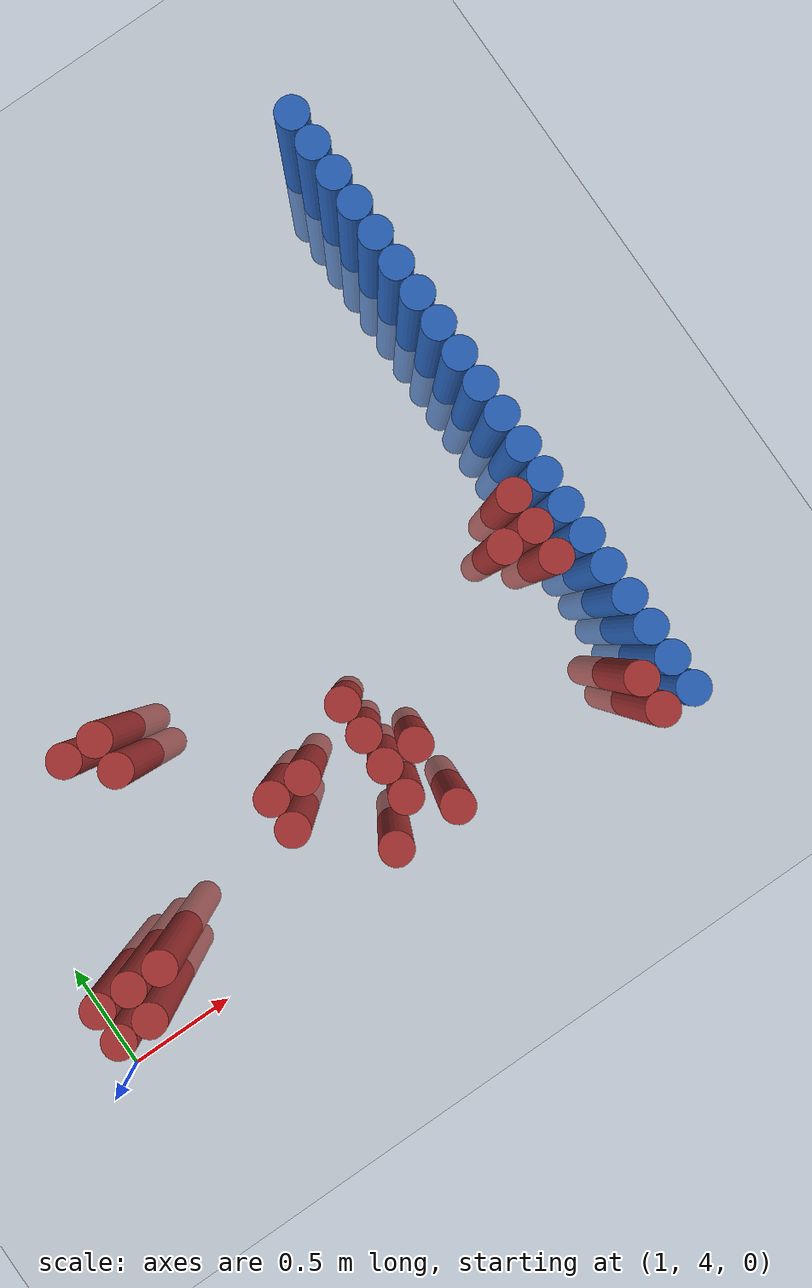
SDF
<sdf version="1.6">
 <world name="default">
  <model name="ground_plane">
   <static>1</static>
   <link name="link">
    <collision name="collision">
     <geometry><plane><normal>0 0 1</normal><size>100 100</size></plane></geometry>
     <surface><friction><ode><mu>100</mu><mu2>50</mu2></ode></friction></surface>
    </collision>
    <visual name="visual">
     <cast_shadows>0</cast_shadows>
     <geometry><plane><normal>0 0 1</normal><size>100 100</size></plane></geometry>
     <material>
      <script><uri>file://media/materials/scripts/gazebo.material</uri><name>Gazebo/Grey</name></script>
     </material>
    </visual>
   </link>
  </model>
  <model name="unit_cylinder_168">
   <static>1</static>
   <pose>3.925000 4.075000 0.000000 0.000000 0.000000 0.000000</pose>
   <link name="link">
    <inertial>
     <mass>1</mass>
     <inertia><ixx>0.145833</ixx><ixy>0</ixy><ixz>0</ixz><iyy>0.145833</iyy><iyz>0</iyz><izz>0.125</izz></inertia>
    </inertial>
    <collision name="collision">
     <geometry><cylinder><radius>0.075000</radius><length>1.5</length></cylinder></geometry>
    </collision>
    <visual name="visual">
     <geometry><cylinder><radius>0.075000</radius><length>1.5</length></cylinder></geometry>
     <material>
      <ambient>0.152000 0.379000 0.720000 1</ambient>
      <diffuse>0.152000 0.379000 0.720000 1</diffuse>
     </material>
     <material>
      <script><name>Gazebo/Grey</name><uri>file://media/materials/scripts/gazebo.material</uri></script>
     </material>
    </visual>
   </link>
  </model>
  <model name="unit_cylinder_170">
   <static>1</static>
   <pose>3.925000 4.225000 0.000000 0.000000 0.000000 0.000000</pose>
   <link name="link">
    <inertial>
     <mass>1</mass>
     <inertia><ixx>0.145833</ixx><ixy>0</ixy><ixz>0</ixz><iyy>0.145833</iyy><iyz>0</iyz><izz>0.125</izz></inertia>
    </inertial>
    <collision name="collision">
     <geometry><cylinder><radius>0.075000</radius><length>1.5</length></cylinder></geometry>
    </collision>
    <visual name="visual">
     <geometry><cylinder><radius>0.075000</radius><length>1.5</length></cylinder></geometry>
     <material>
      <ambient>0.152000 0.379000 0.720000 1</ambient>
      <diffuse>0.152000 0.379000 0.720000 1</diffuse>
     </material>
     <material>
      <script><name>Gazebo/Grey</name><uri>file://media/materials/scripts/gazebo.material</uri></script>
     </material>
    </visual>
   </link>
  </model>
  <model name="unit_cylinder_172">
   <static>1</static>
   <pose>3.925000 4.375000 0.000000 0.000000 0.000000 0.000000</pose>
   <link name="link">
    <inertial>
     <mass>1</mass>
     <inertia><ixx>0.145833</ixx><ixy>0</ixy><ixz>0</ixz><iyy>0.145833</iyy><iyz>0</iyz><izz>0.125</izz></inertia>
    </inertial>
    <collision name="collision">
     <geometry><cylinder><radius>0.075000</radius><length>1.5</length></cylinder></geometry>
    </collision>
    <visual name="visual">
     <geometry><cylinder><radius>0.075000</radius><length>1.5</length></cylinder></geometry>
     <material>
      <ambient>0.152000 0.379000 0.720000 1</ambient>
      <diffuse>0.152000 0.379000 0.720000 1</diffuse>
     </material>
     <material>
      <script><name>Gazebo/Grey</name><uri>file://media/materials/scripts/gazebo.material</uri></script>
     </material>
    </visual>
   </link>
  </model>
  <model name="unit_cylinder_174">
   <static>1</static>
   <pose>3.925000 4.525000 0.000000 0.000000 0.000000 0.000000</pose>
   <link name="link">
    <inertial>
     <mass>1</mass>
     <inertia><ixx>0.145833</ixx><ixy>0</ixy><ixz>0</ixz><iyy>0.145833</iyy><iyz>0</iyz><izz>0.125</izz></inertia>
    </inertial>
    <collision name="collision">
     <geometry><cylinder><radius>0.075000</radius><length>1.5</length></cylinder></geometry>
    </collision>
    <visual name="visual">
     <geometry><cylinder><radius>0.075000</radius><length>1.5</length></cylinder></geometry>
     <material>
      <ambient>0.152000 0.379000 0.720000 1</ambient>
      <diffuse>0.152000 0.379000 0.720000 1</diffuse>
     </material>
     <material>
      <script><name>Gazebo/Grey</name><uri>file://media/materials/scripts/gazebo.material</uri></script>
     </material>
    </visual>
   </link>
  </model>
  <model name="unit_cylinder_176">
   <static>1</static>
   <pose>3.925000 4.675000 0.000000 0.000000 0.000000 0.000000</pose>
   <link name="link">
    <inertial>
     <mass>1</mass>
     <inertia><ixx>0.145833</ixx><ixy>0</ixy><ixz>0</ixz><iyy>0.145833</iyy><iyz>0</iyz><izz>0.125</izz></inertia>
    </inertial>
    <collision name="collision">
     <geometry><cylinder><radius>0.075000</radius><length>1.5</length></cylinder></geometry>
    </collision>
    <visual name="visual">
     <geometry><cylinder><radius>0.075000</radius><length>1.5</length></cylinder></geometry>
     <material>
      <ambient>0.152000 0.379000 0.720000 1</ambient>
      <diffuse>0.152000 0.379000 0.720000 1</diffuse>
     </material>
     <material>
      <script><name>Gazebo/Grey</name><uri>file://media/materials/scripts/gazebo.material</uri></script>
     </material>
    </visual>
   </link>
  </model>
  <model name="unit_cylinder_178">
   <static>1</static>
   <pose>3.925000 4.825000 0.000000 0.000000 0.000000 0.000000</pose>
   <link name="link">
    <inertial>
     <mass>1</mass>
     <inertia><ixx>0.145833</ixx><ixy>0</ixy><ixz>0</ixz><iyy>0.145833</iyy><iyz>0</iyz><izz>0.125</izz></inertia>
    </inertial>
    <collision name="collision">
     <geometry><cylinder><radius>0.075000</radius><length>1.5</length></cylinder></geometry>
    </collision>
    <visual name="visual">
     <geometry><cylinder><radius>0.075000</radius><length>1.5</length></cylinder></geometry>
     <material>
      <ambient>0.152000 0.379000 0.720000 1</ambient>
      <diffuse>0.152000 0.379000 0.720000 1</diffuse>
     </material>
     <material>
      <script><name>Gazebo/Grey</name><uri>file://media/materials/scripts/gazebo.material</uri></script>
     </material>
    </visual>
   </link>
  </model>
  <model name="unit_cylinder_180">
   <static>1</static>
   <pose>3.925000 4.975000 0.000000 0.000000 0.000000 0.000000</pose>
   <link name="link">
    <inertial>
     <mass>1</mass>
     <inertia><ixx>0.145833</ixx><ixy>0</ixy><ixz>0</ixz><iyy>0.145833</iyy><iyz>0</iyz><izz>0.125</izz></inertia>
    </inertial>
    <collision name="collision">
     <geometry><cylinder><radius>0.075000</radius><length>1.5</length></cylinder></geometry>
    </collision>
    <visual name="visual">
     <geometry><cylinder><radius>0.075000</radius><length>1.5</length></cylinder></geometry>
     <material>
      <ambient>0.152000 0.379000 0.720000 1</ambient>
      <diffuse>0.152000 0.379000 0.720000 1</diffuse>
     </material>
     <material>
      <script><name>Gazebo/Grey</name><uri>file://media/materials/scripts/gazebo.material</uri></script>
     </material>
    </visual>
   </link>
  </model>
  <model name="unit_cylinder_182">
   <static>1</static>
   <pose>3.925000 5.125000 0.000000 0.000000 0.000000 0.000000</pose>
   <link name="link">
    <inertial>
     <mass>1</mass>
     <inertia><ixx>0.145833</ixx><ixy>0</ixy><ixz>0</ixz><iyy>0.145833</iyy><iyz>0</iyz><izz>0.125</izz></inertia>
    </inertial>
    <collision name="collision">
     <geometry><cylinder><radius>0.075000</radius><length>1.5</length></cylinder></geometry>
    </collision>
    <visual name="visual">
     <geometry><cylinder><radius>0.075000</radius><length>1.5</length></cylinder></geometry>
     <material>
      <ambient>0.152000 0.379000 0.720000 1</ambient>
      <diffuse>0.152000 0.379000 0.720000 1</diffuse>
     </material>
     <material>
      <script><name>Gazebo/Grey</name><uri>file://media/materials/scripts/gazebo.material</uri></script>
     </material>
    </visual>
   </link>
  </model>
  <model name="unit_cylinder_184">
   <static>1</static>
   <pose>3.925000 5.275000 0.000000 0.000000 0.000000 0.000000</pose>
   <link name="link">
    <inertial>
     <mass>1</mass>
     <inertia><ixx>0.145833</ixx><ixy>0</ixy><ixz>0</ixz><iyy>0.145833</iyy><iyz>0</iyz><izz>0.125</izz></inertia>
    </inertial>
    <collision name="collision">
     <geometry><cylinder><radius>0.075000</radius><length>1.5</length></cylinder></geometry>
    </collision>
    <visual name="visual">
     <geometry><cylinder><radius>0.075000</radius><length>1.5</length></cylinder></geometry>
     <material>
      <ambient>0.152000 0.379000 0.720000 1</ambient>
      <diffuse>0.152000 0.379000 0.720000 1</diffuse>
     </material>
     <material>
      <script><name>Gazebo/Grey</name><uri>file://media/materials/scripts/gazebo.material</uri></script>
     </material>
    </visual>
   </link>
  </model>
  <model name="unit_cylinder_186">
   <static>1</static>
   <pose>3.925000 5.425000 0.000000 0.000000 0.000000 0.000000</pose>
   <link name="link">
    <inertial>
     <mass>1</mass>
     <inertia><ixx>0.145833</ixx><ixy>0</ixy><ixz>0</ixz><iyy>0.145833</iyy><iyz>0</iyz><izz>0.125</izz></inertia>
    </inertial>
    <collision name="collision">
     <geometry><cylinder><radius>0.075000</radius><length>1.5</length></cylinder></geometry>
    </collision>
    <visual name="visual">
     <geometry><cylinder><radius>0.075000</radius><length>1.5</length></cylinder></geometry>
     <material>
      <ambient>0.152000 0.379000 0.720000 1</ambient>
      <diffuse>0.152000 0.379000 0.720000 1</diffuse>
     </material>
     <material>
      <script><name>Gazebo/Grey</name><uri>file://media/materials/scripts/gazebo.material</uri></script>
     </material>
    </visual>
   </link>
  </model>
  <model name="unit_cylinder_188">
   <static>1</static>
   <pose>3.925000 5.575000 0.000000 0.000000 0.000000 0.000000</pose>
   <link name="link">
    <inertial>
     <mass>1</mass>
     <inertia><ixx>0.145833</ixx><ixy>0</ixy><ixz>0</ixz><iyy>0.145833</iyy><iyz>0</iyz><izz>0.125</izz></inertia>
    </inertial>
    <collision name="collision">
     <geometry><cylinder><radius>0.075000</radius><length>1.5</length></cylinder></geometry>
    </collision>
    <visual name="visual">
     <geometry><cylinder><radius>0.075000</radius><length>1.5</length></cylinder></geometry>
     <material>
      <ambient>0.152000 0.379000 0.720000 1</ambient>
      <diffuse>0.152000 0.379000 0.720000 1</diffuse>
     </material>
     <material>
      <script><name>Gazebo/Grey</name><uri>file://media/materials/scripts/gazebo.material</uri></script>
     </material>
    </visual>
   </link>
  </model>
  <model name="unit_cylinder_190">
   <static>1</static>
   <pose>3.925000 5.725000 0.000000 0.000000 0.000000 0.000000</pose>
   <link name="link">
    <inertial>
     <mass>1</mass>
     <inertia><ixx>0.145833</ixx><ixy>0</ixy><ixz>0</ixz><iyy>0.145833</iyy><iyz>0</iyz><izz>0.125</izz></inertia>
    </inertial>
    <collision name="collision">
     <geometry><cylinder><radius>0.075000</radius><length>1.5</length></cylinder></geometry>
    </collision>
    <visual name="visual">
     <geometry><cylinder><radius>0.075000</radius><length>1.5</length></cylinder></geometry>
     <material>
      <ambient>0.152000 0.379000 0.720000 1</ambient>
      <diffuse>0.152000 0.379000 0.720000 1</diffuse>
     </material>
     <material>
      <script><name>Gazebo/Grey</name><uri>file://media/materials/scripts/gazebo.material</uri></script>
     </material>
    </visual>
   </link>
  </model>
  <model name="unit_cylinder_192">
   <static>1</static>
   <pose>3.925000 5.875000 0.000000 0.000000 0.000000 0.000000</pose>
   <link name="link">
    <inertial>
     <mass>1</mass>
     <inertia><ixx>0.145833</ixx><ixy>0</ixy><ixz>0</ixz><iyy>0.145833</iyy><iyz>0</iyz><izz>0.125</izz></inertia>
    </inertial>
    <collision name="collision">
     <geometry><cylinder><radius>0.075000</radius><length>1.5</length></cylinder></geometry>
    </collision>
    <visual name="visual">
     <geometry><cylinder><radius>0.075000</radius><length>1.5</length></cylinder></geometry>
     <material>
      <ambient>0.152000 0.379000 0.720000 1</ambient>
      <diffuse>0.152000 0.379000 0.720000 1</diffuse>
     </material>
     <material>
      <script><name>Gazebo/Grey</name><uri>file://media/materials/scripts/gazebo.material</uri></script>
     </material>
    </visual>
   </link>
  </model>
  <model name="unit_cylinder_194">
   <static>1</static>
   <pose>3.925000 6.025000 0.000000 0.000000 0.000000 0.000000</pose>
   <link name="link">
    <inertial>
     <mass>1</mass>
     <inertia><ixx>0.145833</ixx><ixy>0</ixy><ixz>0</ixz><iyy>0.145833</iyy><iyz>0</iyz><izz>0.125</izz></inertia>
    </inertial>
    <collision name="collision">
     <geometry><cylinder><radius>0.075000</radius><length>1.5</length></cylinder></geometry>
    </collision>
    <visual name="visual">
     <geometry><cylinder><radius>0.075000</radius><length>1.5</length></cylinder></geometry>
     <material>
      <ambient>0.152000 0.379000 0.720000 1</ambient>
      <diffuse>0.152000 0.379000 0.720000 1</diffuse>
     </material>
     <material>
      <script><name>Gazebo/Grey</name><uri>file://media/materials/scripts/gazebo.material</uri></script>
     </material>
    </visual>
   </link>
  </model>
  <model name="unit_cylinder_196">
   <static>1</static>
   <pose>3.925000 6.175000 0.000000 0.000000 0.000000 0.000000</pose>
   <link name="link">
    <inertial>
     <mass>1</mass>
     <inertia><ixx>0.145833</ixx><ixy>0</ixy><ixz>0</ixz><iyy>0.145833</iyy><iyz>0</iyz><izz>0.125</izz></inertia>
    </inertial>
    <collision name="collision">
     <geometry><cylinder><radius>0.075000</radius><length>1.5</length></cylinder></geometry>
    </collision>
    <visual name="visual">
     <geometry><cylinder><radius>0.075000</radius><length>1.5</length></cylinder></geometry>
     <material>
      <ambient>0.152000 0.379000 0.720000 1</ambient>
      <diffuse>0.152000 0.379000 0.720000 1</diffuse>
     </material>
     <material>
      <script><name>Gazebo/Grey</name><uri>file://media/materials/scripts/gazebo.material</uri></script>
     </material>
    </visual>
   </link>
  </model>
  <model name="unit_cylinder_198">
   <static>1</static>
   <pose>3.925000 6.325000 0.000000 0.000000 0.000000 0.000000</pose>
   <link name="link">
    <inertial>
     <mass>1</mass>
     <inertia><ixx>0.145833</ixx><ixy>0</ixy><ixz>0</ixz><iyy>0.145833</iyy><iyz>0</iyz><izz>0.125</izz></inertia>
    </inertial>
    <collision name="collision">
     <geometry><cylinder><radius>0.075000</radius><length>1.5</length></cylinder></geometry>
    </collision>
    <visual name="visual">
     <geometry><cylinder><radius>0.075000</radius><length>1.5</length></cylinder></geometry>
     <material>
      <ambient>0.152000 0.379000 0.720000 1</ambient>
      <diffuse>0.152000 0.379000 0.720000 1</diffuse>
     </material>
     <material>
      <script><name>Gazebo/Grey</name><uri>file://media/materials/scripts/gazebo.material</uri></script>
     </material>
    </visual>
   </link>
  </model>
  <model name="unit_cylinder_200">
   <static>1</static>
   <pose>3.925000 6.475000 0.000000 0.000000 0.000000 0.000000</pose>
   <link name="link">
    <inertial>
     <mass>1</mass>
     <inertia><ixx>0.145833</ixx><ixy>0</ixy><ixz>0</ixz><iyy>0.145833</iyy><iyz>0</iyz><izz>0.125</izz></inertia>
    </inertial>
    <collision name="collision">
     <geometry><cylinder><radius>0.075000</radius><length>1.5</length></cylinder></geometry>
    </collision>
    <visual name="visual">
     <geometry><cylinder><radius>0.075000</radius><length>1.5</length></cylinder></geometry>
     <material>
      <ambient>0.152000 0.379000 0.720000 1</ambient>
      <diffuse>0.152000 0.379000 0.720000 1</diffuse>
     </material>
     <material>
      <script><name>Gazebo/Grey</name><uri>file://media/materials/scripts/gazebo.material</uri></script>
     </material>
    </visual>
   </link>
  </model>
  <model name="unit_cylinder_202">
   <static>1</static>
   <pose>3.925000 6.625000 0.000000 0.000000 0.000000 0.000000</pose>
   <link name="link">
    <inertial>
     <mass>1</mass>
     <inertia><ixx>0.145833</ixx><ixy>0</ixy><ixz>0</ixz><iyy>0.145833</iyy><iyz>0</iyz><izz>0.125</izz></inertia>
    </inertial>
    <collision name="collision">
     <geometry><cylinder><radius>0.075000</radius><length>1.5</length></cylinder></geometry>
    </collision>
    <visual name="visual">
     <geometry><cylinder><radius>0.075000</radius><length>1.5</length></cylinder></geometry>
     <material>
      <ambient>0.152000 0.379000 0.720000 1</ambient>
      <diffuse>0.152000 0.379000 0.720000 1</diffuse>
     </material>
     <material>
      <script><name>Gazebo/Grey</name><uri>file://media/materials/scripts/gazebo.material</uri></script>
     </material>
    </visual>
   </link>
  </model>
  <model name="unit_cylinder_204">
   <static>1</static>
   <pose>3.925000 6.775000 0.000000 0.000000 0.000000 0.000000</pose>
   <link name="link">
    <inertial>
     <mass>1</mass>
     <inertia><ixx>0.145833</ixx><ixy>0</ixy><ixz>0</ixz><iyy>0.145833</iyy><iyz>0</iyz><izz>0.125</izz></inertia>
    </inertial>
    <collision name="collision">
     <geometry><cylinder><radius>0.075000</radius><length>1.5</length></cylinder></geometry>
    </collision>
    <visual name="visual">
     <geometry><cylinder><radius>0.075000</radius><length>1.5</length></cylinder></geometry>
     <material>
      <ambient>0.152000 0.379000 0.720000 1</ambient>
      <diffuse>0.152000 0.379000 0.720000 1</diffuse>
     </material>
     <material>
      <script><name>Gazebo/Grey</name><uri>file://media/materials/scripts/gazebo.material</uri></script>
     </material>
    </visual>
   </link>
  </model>
  <model name="unit_cylinder_206">
   <static>1</static>
   <pose>3.925000 6.925000 0.000000 0.000000 0.000000 0.000000</pose>
   <link name="link">
    <inertial>
     <mass>1</mass>
     <inertia><ixx>0.145833</ixx><ixy>0</ixy><ixz>0</ixz><iyy>0.145833</iyy><iyz>0</iyz><izz>0.125</izz></inertia>
    </inertial>
    <collision name="collision">
     <geometry><cylinder><radius>0.075000</radius><length>1.5</length></cylinder></geometry>
    </collision>
    <visual name="visual">
     <geometry><cylinder><radius>0.075000</radius><length>1.5</length></cylinder></geometry>
     <material>
      <ambient>0.152000 0.379000 0.720000 1</ambient>
      <diffuse>0.152000 0.379000 0.720000 1</diffuse>
     </material>
     <material>
      <script><name>Gazebo/Grey</name><uri>file://media/materials/scripts/gazebo.material</uri></script>
     </material>
    </visual>
   </link>
  </model>
  <model name="unit_cylinder_458">
   <static>1</static>
   <pose>1.225000 4.225000 0.000000 0.000000 0.000000 0.000000</pose>
   <link name="link">
    <inertial>
     <mass>1</mass>
     <inertia><ixx>0.145833</ixx><ixy>0</ixy><ixz>0</ixz><iyy>0.145833</iyy><iyz>0</iyz><izz>0.125</izz></inertia>
    </inertial>
    <collision name="collision">
     <geometry><cylinder><radius>0.075000</radius><length>1.5</length></cylinder></geometry>
    </collision>
    <visual name="visual">
     <geometry><cylinder><radius>0.075000</radius><length>1.5</length></cylinder></geometry>
     <material>
      <ambient>0.648000 0.192000 0.192000 1</ambient>
      <diffuse>0.648000 0.192000 0.192000 1</diffuse>
     </material>
     <material>
      <script><name>Gazebo/Grey</name><uri>file://media/materials/scripts/gazebo.material</uri></script>
     </material>
    </visual>
   </link>
  </model>
  <model name="unit_cylinder_459">
   <static>1</static>
   <pose>1.225000 4.375000 0.000000 0.000000 0.000000 0.000000</pose>
   <link name="link">
    <inertial>
     <mass>1</mass>
     <inertia><ixx>0.145833</ixx><ixy>0</ixy><ixz>0</ixz><iyy>0.145833</iyy><iyz>0</iyz><izz>0.125</izz></inertia>
    </inertial>
    <collision name="collision">
     <geometry><cylinder><radius>0.075000</radius><length>1.5</length></cylinder></geometry>
    </collision>
    <visual name="visual">
     <geometry><cylinder><radius>0.075000</radius><length>1.5</length></cylinder></geometry>
     <material>
      <ambient>0.648000 0.192000 0.192000 1</ambient>
      <diffuse>0.648000 0.192000 0.192000 1</diffuse>
     </material>
     <material>
      <script><name>Gazebo/Grey</name><uri>file://media/materials/scripts/gazebo.material</uri></script>
     </material>
    </visual>
   </link>
  </model>
  <model name="unit_cylinder_467">
   <static>1</static>
   <pose>1.375000 4.225000 0.000000 0.000000 0.000000 0.000000</pose>
   <link name="link">
    <inertial>
     <mass>1</mass>
     <inertia><ixx>0.145833</ixx><ixy>0</ixy><ixz>0</ixz><iyy>0.145833</iyy><iyz>0</iyz><izz>0.125</izz></inertia>
    </inertial>
    <collision name="collision">
     <geometry><cylinder><radius>0.075000</radius><length>1.5</length></cylinder></geometry>
    </collision>
    <visual name="visual">
     <geometry><cylinder><radius>0.075000</radius><length>1.5</length></cylinder></geometry>
     <material>
      <ambient>0.648000 0.192000 0.192000 1</ambient>
      <diffuse>0.648000 0.192000 0.192000 1</diffuse>
     </material>
     <material>
      <script><name>Gazebo/Grey</name><uri>file://media/materials/scripts/gazebo.material</uri></script>
     </material>
    </visual>
   </link>
  </model>
  <model name="unit_cylinder_468">
   <static>1</static>
   <pose>1.375000 4.375000 0.000000 0.000000 0.000000 0.000000</pose>
   <link name="link">
    <inertial>
     <mass>1</mass>
     <inertia><ixx>0.145833</ixx><ixy>0</ixy><ixz>0</ixz><iyy>0.145833</iyy><iyz>0</iyz><izz>0.125</izz></inertia>
    </inertial>
    <collision name="collision">
     <geometry><cylinder><radius>0.075000</radius><length>1.5</length></cylinder></geometry>
    </collision>
    <visual name="visual">
     <geometry><cylinder><radius>0.075000</radius><length>1.5</length></cylinder></geometry>
     <material>
      <ambient>0.648000 0.192000 0.192000 1</ambient>
      <diffuse>0.648000 0.192000 0.192000 1</diffuse>
     </material>
     <material>
      <script><name>Gazebo/Grey</name><uri>file://media/materials/scripts/gazebo.material</uri></script>
     </material>
    </visual>
   </link>
  </model>
  <model name="unit_cylinder_473">
   <static>1</static>
   <pose>1.525000 4.375000 0.000000 0.000000 0.000000 0.000000</pose>
   <link name="link">
    <inertial>
     <mass>1</mass>
     <inertia><ixx>0.145833</ixx><ixy>0</ixy><ixz>0</ixz><iyy>0.145833</iyy><iyz>0</iyz><izz>0.125</izz></inertia>
    </inertial>
    <collision name="collision">
     <geometry><cylinder><radius>0.075000</radius><length>1.5</length></cylinder></geometry>
    </collision>
    <visual name="visual">
     <geometry><cylinder><radius>0.075000</radius><length>1.5</length></cylinder></geometry>
     <material>
      <ambient>0.648000 0.192000 0.192000 1</ambient>
      <diffuse>0.648000 0.192000 0.192000 1</diffuse>
     </material>
     <material>
      <script><name>Gazebo/Grey</name><uri>file://media/materials/scripts/gazebo.material</uri></script>
     </material>
    </visual>
   </link>
  </model>
  <model name="unit_cylinder_477">
   <static>1</static>
   <pose>1.675000 5.275000 0.000000 0.000000 0.000000 0.000000</pose>
   <link name="link">
    <inertial>
     <mass>1</mass>
     <inertia><ixx>0.145833</ixx><ixy>0</ixy><ixz>0</ixz><iyy>0.145833</iyy><iyz>0</iyz><izz>0.125</izz></inertia>
    </inertial>
    <collision name="collision">
     <geometry><cylinder><radius>0.075000</radius><length>1.5</length></cylinder></geometry>
    </collision>
    <visual name="visual">
     <geometry><cylinder><radius>0.075000</radius><length>1.5</length></cylinder></geometry>
     <material>
      <ambient>0.648000 0.192000 0.192000 1</ambient>
      <diffuse>0.648000 0.192000 0.192000 1</diffuse>
     </material>
     <material>
      <script><name>Gazebo/Grey</name><uri>file://media/materials/scripts/gazebo.material</uri></script>
     </material>
    </visual>
   </link>
  </model>
  <model name="unit_cylinder_481">
   <static>1</static>
   <pose>1.825000 5.125000 0.000000 0.000000 0.000000 0.000000</pose>
   <link name="link">
    <inertial>
     <mass>1</mass>
     <inertia><ixx>0.145833</ixx><ixy>0</ixy><ixz>0</ixz><iyy>0.145833</iyy><iyz>0</iyz><izz>0.125</izz></inertia>
    </inertial>
    <collision name="collision">
     <geometry><cylinder><radius>0.075000</radius><length>1.5</length></cylinder></geometry>
    </collision>
    <visual name="visual">
     <geometry><cylinder><radius>0.075000</radius><length>1.5</length></cylinder></geometry>
     <material>
      <ambient>0.648000 0.192000 0.192000 1</ambient>
      <diffuse>0.648000 0.192000 0.192000 1</diffuse>
     </material>
     <material>
      <script><name>Gazebo/Grey</name><uri>file://media/materials/scripts/gazebo.material</uri></script>
     </material>
    </visual>
   </link>
  </model>
  <model name="unit_cylinder_482">
   <static>1</static>
   <pose>1.825000 5.275000 0.000000 0.000000 0.000000 0.000000</pose>
   <link name="link">
    <inertial>
     <mass>1</mass>
     <inertia><ixx>0.145833</ixx><ixy>0</ixy><ixz>0</ixz><iyy>0.145833</iyy><iyz>0</iyz><izz>0.125</izz></inertia>
    </inertial>
    <collision name="collision">
     <geometry><cylinder><radius>0.075000</radius><length>1.5</length></cylinder></geometry>
    </collision>
    <visual name="visual">
     <geometry><cylinder><radius>0.075000</radius><length>1.5</length></cylinder></geometry>
     <material>
      <ambient>0.648000 0.192000 0.192000 1</ambient>
      <diffuse>0.648000 0.192000 0.192000 1</diffuse>
     </material>
     <material>
      <script><name>Gazebo/Grey</name><uri>file://media/materials/scripts/gazebo.material</uri></script>
     </material>
    </visual>
   </link>
  </model>
  <model name="unit_cylinder_499">
   <static>1</static>
   <pose>2.275000 4.525000 0.000000 0.000000 0.000000 0.000000</pose>
   <link name="link">
    <inertial>
     <mass>1</mass>
     <inertia><ixx>0.145833</ixx><ixy>0</ixy><ixz>0</ixz><iyy>0.145833</iyy><iyz>0</iyz><izz>0.125</izz></inertia>
    </inertial>
    <collision name="collision">
     <geometry><cylinder><radius>0.075000</radius><length>1.5</length></cylinder></geometry>
    </collision>
    <visual name="visual">
     <geometry><cylinder><radius>0.075000</radius><length>1.5</length></cylinder></geometry>
     <material>
      <ambient>0.648000 0.192000 0.192000 1</ambient>
      <diffuse>0.648000 0.192000 0.192000 1</diffuse>
     </material>
     <material>
      <script><name>Gazebo/Grey</name><uri>file://media/materials/scripts/gazebo.material</uri></script>
     </material>
    </visual>
   </link>
  </model>
  <model name="unit_cylinder_500">
   <static>1</static>
   <pose>2.275000 4.675000 0.000000 0.000000 0.000000 0.000000</pose>
   <link name="link">
    <inertial>
     <mass>1</mass>
     <inertia><ixx>0.145833</ixx><ixy>0</ixy><ixz>0</ixz><iyy>0.145833</iyy><iyz>0</iyz><izz>0.125</izz></inertia>
    </inertial>
    <collision name="collision">
     <geometry><cylinder><radius>0.075000</radius><length>1.5</length></cylinder></geometry>
    </collision>
    <visual name="visual">
     <geometry><cylinder><radius>0.075000</radius><length>1.5</length></cylinder></geometry>
     <material>
      <ambient>0.648000 0.192000 0.192000 1</ambient>
      <diffuse>0.648000 0.192000 0.192000 1</diffuse>
     </material>
     <material>
      <script><name>Gazebo/Grey</name><uri>file://media/materials/scripts/gazebo.material</uri></script>
     </material>
    </visual>
   </link>
  </model>
  <model name="unit_cylinder_507">
   <static>1</static>
   <pose>2.425000 4.675000 0.000000 0.000000 0.000000 0.000000</pose>
   <link name="link">
    <inertial>
     <mass>1</mass>
     <inertia><ixx>0.145833</ixx><ixy>0</ixy><ixz>0</ixz><iyy>0.145833</iyy><iyz>0</iyz><izz>0.125</izz></inertia>
    </inertial>
    <collision name="collision">
     <geometry><cylinder><radius>0.075000</radius><length>1.5</length></cylinder></geometry>
    </collision>
    <visual name="visual">
     <geometry><cylinder><radius>0.075000</radius><length>1.5</length></cylinder></geometry>
     <material>
      <ambient>0.648000 0.192000 0.192000 1</ambient>
      <diffuse>0.648000 0.192000 0.192000 1</diffuse>
     </material>
     <material>
      <script><name>Gazebo/Grey</name><uri>file://media/materials/scripts/gazebo.material</uri></script>
     </material>
    </visual>
   </link>
  </model>
  <model name="unit_cylinder_510">
   <static>1</static>
   <pose>2.575000 4.225000 0.000000 0.000000 0.000000 0.000000</pose>
   <link name="link">
    <inertial>
     <mass>1</mass>
     <inertia><ixx>0.145833</ixx><ixy>0</ixy><ixz>0</ixz><iyy>0.145833</iyy><iyz>0</iyz><izz>0.125</izz></inertia>
    </inertial>
    <collision name="collision">
     <geometry><cylinder><radius>0.075000</radius><length>1.5</length></cylinder></geometry>
    </collision>
    <visual name="visual">
     <geometry><cylinder><radius>0.075000</radius><length>1.5</length></cylinder></geometry>
     <material>
      <ambient>0.648000 0.192000 0.192000 1</ambient>
      <diffuse>0.648000 0.192000 0.192000 1</diffuse>
     </material>
     <material>
      <script><name>Gazebo/Grey</name><uri>file://media/materials/scripts/gazebo.material</uri></script>
     </material>
    </visual>
   </link>
  </model>
  <model name="unit_cylinder_517">
   <static>1</static>
   <pose>2.725000 4.375000 0.000000 0.000000 0.000000 0.000000</pose>
   <link name="link">
    <inertial>
     <mass>1</mass>
     <inertia><ixx>0.145833</ixx><ixy>0</ixy><ixz>0</ixz><iyy>0.145833</iyy><iyz>0</iyz><izz>0.125</izz></inertia>
    </inertial>
    <collision name="collision">
     <geometry><cylinder><radius>0.075000</radius><length>1.5</length></cylinder></geometry>
    </collision>
    <visual name="visual">
     <geometry><cylinder><radius>0.075000</radius><length>1.5</length></cylinder></geometry>
     <material>
      <ambient>0.648000 0.192000 0.192000 1</ambient>
      <diffuse>0.648000 0.192000 0.192000 1</diffuse>
     </material>
     <material>
      <script><name>Gazebo/Grey</name><uri>file://media/materials/scripts/gazebo.material</uri></script>
     </material>
    </visual>
   </link>
  </model>
  <model name="unit_cylinder_518">
   <static>1</static>
   <pose>2.725000 4.525000 0.000000 0.000000 0.000000 0.000000</pose>
   <link name="link">
    <inertial>
     <mass>1</mass>
     <inertia><ixx>0.145833</ixx><ixy>0</ixy><ixz>0</ixz><iyy>0.145833</iyy><iyz>0</iyz><izz>0.125</izz></inertia>
    </inertial>
    <collision name="collision">
     <geometry><cylinder><radius>0.075000</radius><length>1.5</length></cylinder></geometry>
    </collision>
    <visual name="visual">
     <geometry><cylinder><radius>0.075000</radius><length>1.5</length></cylinder></geometry>
     <material>
      <ambient>0.648000 0.192000 0.192000 1</ambient>
      <diffuse>0.648000 0.192000 0.192000 1</diffuse>
     </material>
     <material>
      <script><name>Gazebo/Grey</name><uri>file://media/materials/scripts/gazebo.material</uri></script>
     </material>
    </visual>
   </link>
  </model>
  <model name="unit_cylinder_519">
   <static>1</static>
   <pose>2.725000 4.675000 0.000000 0.000000 0.000000 0.000000</pose>
   <link name="link">
    <inertial>
     <mass>1</mass>
     <inertia><ixx>0.145833</ixx><ixy>0</ixy><ixz>0</ixz><iyy>0.145833</iyy><iyz>0</iyz><izz>0.125</izz></inertia>
    </inertial>
    <collision name="collision">
     <geometry><cylinder><radius>0.075000</radius><length>1.5</length></cylinder></geometry>
    </collision>
    <visual name="visual">
     <geometry><cylinder><radius>0.075000</radius><length>1.5</length></cylinder></geometry>
     <material>
      <ambient>0.648000 0.192000 0.192000 1</ambient>
      <diffuse>0.648000 0.192000 0.192000 1</diffuse>
     </material>
     <material>
      <script><name>Gazebo/Grey</name><uri>file://media/materials/scripts/gazebo.material</uri></script>
     </material>
    </visual>
   </link>
  </model>
  <model name="unit_cylinder_520">
   <static>1</static>
   <pose>2.725000 4.825000 0.000000 0.000000 0.000000 0.000000</pose>
   <link name="link">
    <inertial>
     <mass>1</mass>
     <inertia><ixx>0.145833</ixx><ixy>0</ixy><ixz>0</ixz><iyy>0.145833</iyy><iyz>0</iyz><izz>0.125</izz></inertia>
    </inertial>
    <collision name="collision">
     <geometry><cylinder><radius>0.075000</radius><length>1.5</length></cylinder></geometry>
    </collision>
    <visual name="visual">
     <geometry><cylinder><radius>0.075000</radius><length>1.5</length></cylinder></geometry>
     <material>
      <ambient>0.648000 0.192000 0.192000 1</ambient>
      <diffuse>0.648000 0.192000 0.192000 1</diffuse>
     </material>
     <material>
      <script><name>Gazebo/Grey</name><uri>file://media/materials/scripts/gazebo.material</uri></script>
     </material>
    </visual>
   </link>
  </model>
  <model name="unit_cylinder_526">
   <static>1</static>
   <pose>2.875000 4.225000 0.000000 0.000000 0.000000 0.000000</pose>
   <link name="link">
    <inertial>
     <mass>1</mass>
     <inertia><ixx>0.145833</ixx><ixy>0</ixy><ixz>0</ixz><iyy>0.145833</iyy><iyz>0</iyz><izz>0.125</izz></inertia>
    </inertial>
    <collision name="collision">
     <geometry><cylinder><radius>0.075000</radius><length>1.5</length></cylinder></geometry>
    </collision>
    <visual name="visual">
     <geometry><cylinder><radius>0.075000</radius><length>1.5</length></cylinder></geometry>
     <material>
      <ambient>0.648000 0.192000 0.192000 1</ambient>
      <diffuse>0.648000 0.192000 0.192000 1</diffuse>
     </material>
     <material>
      <script><name>Gazebo/Grey</name><uri>file://media/materials/scripts/gazebo.material</uri></script>
     </material>
    </visual>
   </link>
  </model>
  <model name="unit_cylinder_527">
   <static>1</static>
   <pose>2.875000 4.525000 0.000000 0.000000 0.000000 0.000000</pose>
   <link name="link">
    <inertial>
     <mass>1</mass>
     <inertia><ixx>0.145833</ixx><ixy>0</ixy><ixz>0</ixz><iyy>0.145833</iyy><iyz>0</iyz><izz>0.125</izz></inertia>
    </inertial>
    <collision name="collision">
     <geometry><cylinder><radius>0.075000</radius><length>1.5</length></cylinder></geometry>
    </collision>
    <visual name="visual">
     <geometry><cylinder><radius>0.075000</radius><length>1.5</length></cylinder></geometry>
     <material>
      <ambient>0.648000 0.192000 0.192000 1</ambient>
      <diffuse>0.648000 0.192000 0.192000 1</diffuse>
     </material>
     <material>
      <script><name>Gazebo/Grey</name><uri>file://media/materials/scripts/gazebo.material</uri></script>
     </material>
    </visual>
   </link>
  </model>
  <model name="unit_cylinder_561">
   <static>1</static>
   <pose>3.625000 4.975000 0.000000 0.000000 0.000000 0.000000</pose>
   <link name="link">
    <inertial>
     <mass>1</mass>
     <inertia><ixx>0.145833</ixx><ixy>0</ixy><ixz>0</ixz><iyy>0.145833</iyy><iyz>0</iyz><izz>0.125</izz></inertia>
    </inertial>
    <collision name="collision">
     <geometry><cylinder><radius>0.075000</radius><length>1.5</length></cylinder></geometry>
    </collision>
    <visual name="visual">
     <geometry><cylinder><radius>0.075000</radius><length>1.5</length></cylinder></geometry>
     <material>
      <ambient>0.648000 0.192000 0.192000 1</ambient>
      <diffuse>0.648000 0.192000 0.192000 1</diffuse>
     </material>
     <material>
      <script><name>Gazebo/Grey</name><uri>file://media/materials/scripts/gazebo.material</uri></script>
     </material>
    </visual>
   </link>
  </model>
  <model name="unit_cylinder_587">
   <static>1</static>
   <pose>3.775000 4.075000 0.000000 0.000000 0.000000 0.000000</pose>
   <link name="link">
    <inertial>
     <mass>1</mass>
     <inertia><ixx>0.145833</ixx><ixy>0</ixy><ixz>0</ixz><iyy>0.145833</iyy><iyz>0</iyz><izz>0.125</izz></inertia>
    </inertial>
    <collision name="collision">
     <geometry><cylinder><radius>0.075000</radius><length>1.5</length></cylinder></geometry>
    </collision>
    <visual name="visual">
     <geometry><cylinder><radius>0.075000</radius><length>1.5</length></cylinder></geometry>
     <material>
      <ambient>0.648000 0.192000 0.192000 1</ambient>
      <diffuse>0.648000 0.192000 0.192000 1</diffuse>
     </material>
     <material>
      <script><name>Gazebo/Grey</name><uri>file://media/materials/scripts/gazebo.material</uri></script>
     </material>
    </visual>
   </link>
  </model>
  <model name="unit_cylinder_588">
   <static>1</static>
   <pose>3.775000 4.225000 0.000000 0.000000 0.000000 0.000000</pose>
   <link name="link">
    <inertial>
     <mass>1</mass>
     <inertia><ixx>0.145833</ixx><ixy>0</ixy><ixz>0</ixz><iyy>0.145833</iyy><iyz>0</iyz><izz>0.125</izz></inertia>
    </inertial>
    <collision name="collision">
     <geometry><cylinder><radius>0.075000</radius><length>1.5</length></cylinder></geometry>
    </collision>
    <visual name="visual">
     <geometry><cylinder><radius>0.075000</radius><length>1.5</length></cylinder></geometry>
     <material>
      <ambient>0.648000 0.192000 0.192000 1</ambient>
      <diffuse>0.648000 0.192000 0.192000 1</diffuse>
     </material>
     <material>
      <script><name>Gazebo/Grey</name><uri>file://media/materials/scripts/gazebo.material</uri></script>
     </material>
    </visual>
   </link>
  </model>
  <model name="unit_cylinder_589">
   <static>1</static>
   <pose>3.775000 4.825000 0.000000 0.000000 0.000000 0.000000</pose>
   <link name="link">
    <inertial>
     <mass>1</mass>
     <inertia><ixx>0.145833</ixx><ixy>0</ixy><ixz>0</ixz><iyy>0.145833</iyy><iyz>0</iyz><izz>0.125</izz></inertia>
    </inertial>
    <collision name="collision">
     <geometry><cylinder><radius>0.075000</radius><length>1.5</length></cylinder></geometry>
    </collision>
    <visual name="visual">
     <geometry><cylinder><radius>0.075000</radius><length>1.5</length></cylinder></geometry>
     <material>
      <ambient>0.648000 0.192000 0.192000 1</ambient>
      <diffuse>0.648000 0.192000 0.192000 1</diffuse>
     </material>
     <material>
      <script><name>Gazebo/Grey</name><uri>file://media/materials/scripts/gazebo.material</uri></script>
     </material>
    </visual>
   </link>
  </model>
  <model name="unit_cylinder_590">
   <static>1</static>
   <pose>3.775000 4.975000 0.000000 0.000000 0.000000 0.000000</pose>
   <link name="link">
    <inertial>
     <mass>1</mass>
     <inertia><ixx>0.145833</ixx><ixy>0</ixy><ixz>0</ixz><iyy>0.145833</iyy><iyz>0</iyz><izz>0.125</izz></inertia>
    </inertial>
    <collision name="collision">
     <geometry><cylinder><radius>0.075000</radius><length>1.5</length></cylinder></geometry>
    </collision>
    <visual name="visual">
     <geometry><cylinder><radius>0.075000</radius><length>1.5</length></cylinder></geometry>
     <material>
      <ambient>0.648000 0.192000 0.192000 1</ambient>
      <diffuse>0.648000 0.192000 0.192000 1</diffuse>
     </material>
     <material>
      <script><name>Gazebo/Grey</name><uri>file://media/materials/scripts/gazebo.material</uri></script>
     </material>
    </visual>
   </link>
  </model>
  <model name="unit_cylinder_591">
   <static>1</static>
   <pose>3.775000 5.125000 0.000000 0.000000 0.000000 0.000000</pose>
   <link name="link">
    <inertial>
     <mass>1</mass>
     <inertia><ixx>0.145833</ixx><ixy>0</ixy><ixz>0</ixz><iyy>0.145833</iyy><iyz>0</iyz><izz>0.125</izz></inertia>
    </inertial>
    <collision name="collision">
     <geometry><cylinder><radius>0.075000</radius><length>1.5</length></cylinder></geometry>
    </collision>
    <visual name="visual">
     <geometry><cylinder><radius>0.075000</radius><length>1.5</length></cylinder></geometry>
     <material>
      <ambient>0.648000 0.192000 0.192000 1</ambient>
      <diffuse>0.648000 0.192000 0.192000 1</diffuse>
     </material>
     <material>
      <script><name>Gazebo/Grey</name><uri>file://media/materials/scripts/gazebo.material</uri></script>
     </material>
    </visual>
   </link>
  </model>
  <model name="unit_cylinder_632">
   <static>1</static>
   <pose>3.925000 4.075000 0.000000 0.000000 0.000000 0.000000</pose>
   <link name="link">
    <inertial>
     <mass>1</mass>
     <inertia><ixx>0.145833</ixx><ixy>0</ixy><ixz>0</ixz><iyy>0.145833</iyy><iyz>0</iyz><izz>0.125</izz></inertia>
    </inertial>
    <collision name="collision">
     <geometry><cylinder><radius>0.075000</radius><length>1.5</length></cylinder></geometry>
    </collision>
    <visual name="visual">
     <geometry><cylinder><radius>0.075000</radius><length>1.5</length></cylinder></geometry>
     <material>
      <ambient>0.152000 0.379000 0.720000 1</ambient>
      <diffuse>0.152000 0.379000 0.720000 1</diffuse>
     </material>
     <material>
      <script><name>Gazebo/Grey</name><uri>file://media/materials/scripts/gazebo.material</uri></script>
     </material>
    </visual>
   </link>
  </model>
  <model name="unit_cylinder_633">
   <static>1</static>
   <pose>3.925000 4.225000 0.000000 0.000000 0.000000 0.000000</pose>
   <link name="link">
    <inertial>
     <mass>1</mass>
     <inertia><ixx>0.145833</ixx><ixy>0</ixy><ixz>0</ixz><iyy>0.145833</iyy><iyz>0</iyz><izz>0.125</izz></inertia>
    </inertial>
    <collision name="collision">
     <geometry><cylinder><radius>0.075000</radius><length>1.5</length></cylinder></geometry>
    </collision>
    <visual name="visual">
     <geometry><cylinder><radius>0.075000</radius><length>1.5</length></cylinder></geometry>
     <material>
      <ambient>0.152000 0.379000 0.720000 1</ambient>
      <diffuse>0.152000 0.379000 0.720000 1</diffuse>
     </material>
     <material>
      <script><name>Gazebo/Grey</name><uri>file://media/materials/scripts/gazebo.material</uri></script>
     </material>
    </visual>
   </link>
  </model>
  <model name="unit_cylinder_634">
   <static>1</static>
   <pose>3.925000 4.375000 0.000000 0.000000 0.000000 0.000000</pose>
   <link name="link">
    <inertial>
     <mass>1</mass>
     <inertia><ixx>0.145833</ixx><ixy>0</ixy><ixz>0</ixz><iyy>0.145833</iyy><iyz>0</iyz><izz>0.125</izz></inertia>
    </inertial>
    <collision name="collision">
     <geometry><cylinder><radius>0.075000</radius><length>1.5</length></cylinder></geometry>
    </collision>
    <visual name="visual">
     <geometry><cylinder><radius>0.075000</radius><length>1.5</length></cylinder></geometry>
     <material>
      <ambient>0.152000 0.379000 0.720000 1</ambient>
      <diffuse>0.152000 0.379000 0.720000 1</diffuse>
     </material>
     <material>
      <script><name>Gazebo/Grey</name><uri>file://media/materials/scripts/gazebo.material</uri></script>
     </material>
    </visual>
   </link>
  </model>
  <model name="unit_cylinder_635">
   <static>1</static>
   <pose>3.925000 4.525000 0.000000 0.000000 0.000000 0.000000</pose>
   <link name="link">
    <inertial>
     <mass>1</mass>
     <inertia><ixx>0.145833</ixx><ixy>0</ixy><ixz>0</ixz><iyy>0.145833</iyy><iyz>0</iyz><izz>0.125</izz></inertia>
    </inertial>
    <collision name="collision">
     <geometry><cylinder><radius>0.075000</radius><length>1.5</length></cylinder></geometry>
    </collision>
    <visual name="visual">
     <geometry><cylinder><radius>0.075000</radius><length>1.5</length></cylinder></geometry>
     <material>
      <ambient>0.152000 0.379000 0.720000 1</ambient>
      <diffuse>0.152000 0.379000 0.720000 1</diffuse>
     </material>
     <material>
      <script><name>Gazebo/Grey</name><uri>file://media/materials/scripts/gazebo.material</uri></script>
     </material>
    </visual>
   </link>
  </model>
  <model name="unit_cylinder_636">
   <static>1</static>
   <pose>3.925000 4.675000 0.000000 0.000000 0.000000 0.000000</pose>
   <link name="link">
    <inertial>
     <mass>1</mass>
     <inertia><ixx>0.145833</ixx><ixy>0</ixy><ixz>0</ixz><iyy>0.145833</iyy><iyz>0</iyz><izz>0.125</izz></inertia>
    </inertial>
    <collision name="collision">
     <geometry><cylinder><radius>0.075000</radius><length>1.5</length></cylinder></geometry>
    </collision>
    <visual name="visual">
     <geometry><cylinder><radius>0.075000</radius><length>1.5</length></cylinder></geometry>
     <material>
      <ambient>0.152000 0.379000 0.720000 1</ambient>
      <diffuse>0.152000 0.379000 0.720000 1</diffuse>
     </material>
     <material>
      <script><name>Gazebo/Grey</name><uri>file://media/materials/scripts/gazebo.material</uri></script>
     </material>
    </visual>
   </link>
  </model>
  <model name="unit_cylinder_637">
   <static>1</static>
   <pose>3.925000 4.825000 0.000000 0.000000 0.000000 0.000000</pose>
   <link name="link">
    <inertial>
     <mass>1</mass>
     <inertia><ixx>0.145833</ixx><ixy>0</ixy><ixz>0</ixz><iyy>0.145833</iyy><iyz>0</iyz><izz>0.125</izz></inertia>
    </inertial>
    <collision name="collision">
     <geometry><cylinder><radius>0.075000</radius><length>1.5</length></cylinder></geometry>
    </collision>
    <visual name="visual">
     <geometry><cylinder><radius>0.075000</radius><length>1.5</length></cylinder></geometry>
     <material>
      <ambient>0.152000 0.379000 0.720000 1</ambient>
      <diffuse>0.152000 0.379000 0.720000 1</diffuse>
     </material>
     <material>
      <script><name>Gazebo/Grey</name><uri>file://media/materials/scripts/gazebo.material</uri></script>
     </material>
    </visual>
   </link>
  </model>
  <model name="unit_cylinder_638">
   <static>1</static>
   <pose>3.925000 4.975000 0.000000 0.000000 0.000000 0.000000</pose>
   <link name="link">
    <inertial>
     <mass>1</mass>
     <inertia><ixx>0.145833</ixx><ixy>0</ixy><ixz>0</ixz><iyy>0.145833</iyy><iyz>0</iyz><izz>0.125</izz></inertia>
    </inertial>
    <collision name="collision">
     <geometry><cylinder><radius>0.075000</radius><length>1.5</length></cylinder></geometry>
    </collision>
    <visual name="visual">
     <geometry><cylinder><radius>0.075000</radius><length>1.5</length></cylinder></geometry>
     <material>
      <ambient>0.152000 0.379000 0.720000 1</ambient>
      <diffuse>0.152000 0.379000 0.720000 1</diffuse>
     </material>
     <material>
      <script><name>Gazebo/Grey</name><uri>file://media/materials/scripts/gazebo.material</uri></script>
     </material>
    </visual>
   </link>
  </model>
  <model name="unit_cylinder_639">
   <static>1</static>
   <pose>3.925000 5.125000 0.000000 0.000000 0.000000 0.000000</pose>
   <link name="link">
    <inertial>
     <mass>1</mass>
     <inertia><ixx>0.145833</ixx><ixy>0</ixy><ixz>0</ixz><iyy>0.145833</iyy><iyz>0</iyz><izz>0.125</izz></inertia>
    </inertial>
    <collision name="collision">
     <geometry><cylinder><radius>0.075000</radius><length>1.5</length></cylinder></geometry>
    </collision>
    <visual name="visual">
     <geometry><cylinder><radius>0.075000</radius><length>1.5</length></cylinder></geometry>
     <material>
      <ambient>0.152000 0.379000 0.720000 1</ambient>
      <diffuse>0.152000 0.379000 0.720000 1</diffuse>
     </material>
     <material>
      <script><name>Gazebo/Grey</name><uri>file://media/materials/scripts/gazebo.material</uri></script>
     </material>
    </visual>
   </link>
  </model>
  <model name="unit_cylinder_640">
   <static>1</static>
   <pose>3.925000 5.275000 0.000000 0.000000 0.000000 0.000000</pose>
   <link name="link">
    <inertial>
     <mass>1</mass>
     <inertia><ixx>0.145833</ixx><ixy>0</ixy><ixz>0</ixz><iyy>0.145833</iyy><iyz>0</iyz><izz>0.125</izz></inertia>
    </inertial>
    <collision name="collision">
     <geometry><cylinder><radius>0.075000</radius><length>1.5</length></cylinder></geometry>
    </collision>
    <visual name="visual">
     <geometry><cylinder><radius>0.075000</radius><length>1.5</length></cylinder></geometry>
     <material>
      <ambient>0.152000 0.379000 0.720000 1</ambient>
      <diffuse>0.152000 0.379000 0.720000 1</diffuse>
     </material>
     <material>
      <script><name>Gazebo/Grey</name><uri>file://media/materials/scripts/gazebo.material</uri></script>
     </material>
    </visual>
   </link>
  </model>
  <model name="unit_cylinder_641">
   <static>1</static>
   <pose>3.925000 5.425000 0.000000 0.000000 0.000000 0.000000</pose>
   <link name="link">
    <inertial>
     <mass>1</mass>
     <inertia><ixx>0.145833</ixx><ixy>0</ixy><ixz>0</ixz><iyy>0.145833</iyy><iyz>0</iyz><izz>0.125</izz></inertia>
    </inertial>
    <collision name="collision">
     <geometry><cylinder><radius>0.075000</radius><length>1.5</length></cylinder></geometry>
    </collision>
    <visual name="visual">
     <geometry><cylinder><radius>0.075000</radius><length>1.5</length></cylinder></geometry>
     <material>
      <ambient>0.152000 0.379000 0.720000 1</ambient>
      <diffuse>0.152000 0.379000 0.720000 1</diffuse>
     </material>
     <material>
      <script><name>Gazebo/Grey</name><uri>file://media/materials/scripts/gazebo.material</uri></script>
     </material>
    </visual>
   </link>
  </model>
 </world>
</sdf>
